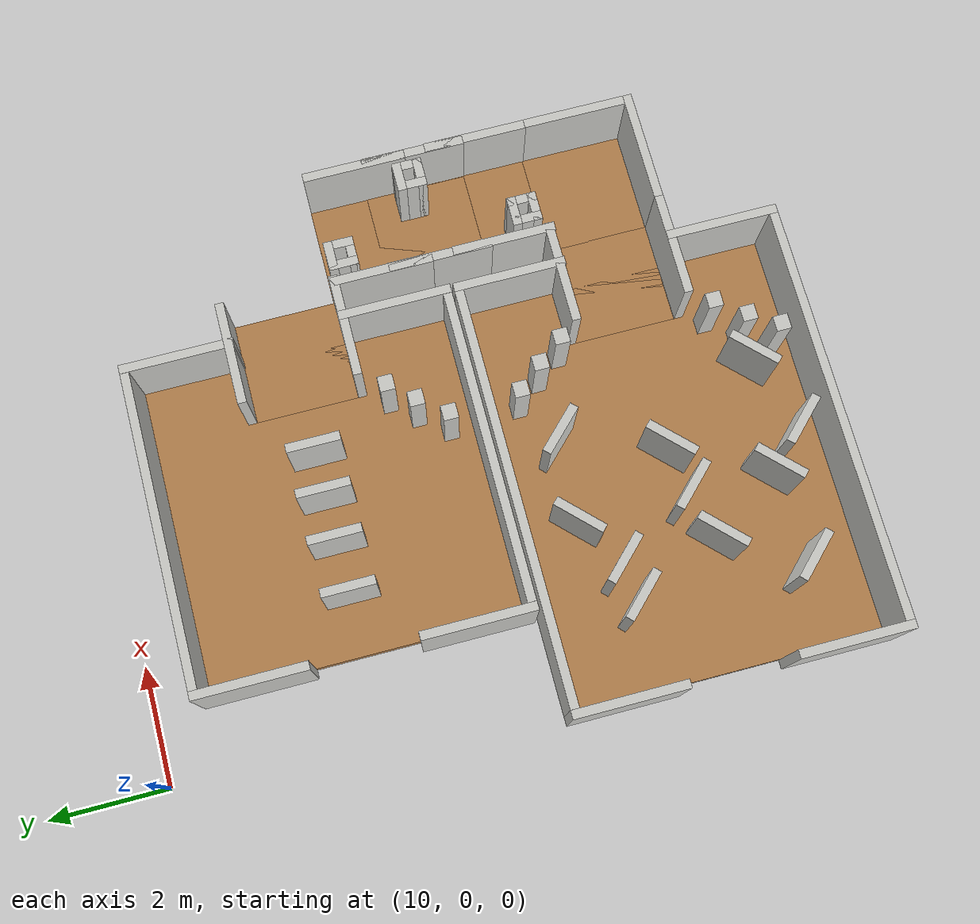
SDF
<sdf version="1.6">
 <world name="default">
  <model name="ground_plane">
   <static>1</static>
   <link name="link">
    <collision name="collision">
     <geometry><plane><normal>0 0 1</normal><size>100 100</size></plane></geometry>
     <surface><friction><ode><mu>100</mu><mu2>50</mu2></ode></friction></surface>
    </collision>
    <visual name="visual">
     <cast_shadows>0</cast_shadows>
     <geometry><plane><normal>0 0 1</normal><size>100 100</size></plane></geometry>
     <material>
      <script><uri>file://media/materials/scripts/gazebo.material</uri><name>Gazebo/Grey</name></script>
     </material>
    </visual>
   </link>
  </model>
  <model name="nerve_room_3x4">
   <pose>12.9907 -9.16925 0 0 -0 1.5708</pose>
   <link name="Wall_11">
    <collision name="Wall_11_Collision">
     <geometry><box><size>7 0.15 1.5</size></box></geometry>
     <pose>0 0 0.75 0 -0 0</pose>
    </collision>
    <visual name="Wall_11_Visual">
     <pose>0 0 0.75 0 -0 0</pose>
     <geometry><box><size>7 0.15 1.5</size></box></geometry>
     <material>
      <script><uri>file://media/materials/scripts/gazebo.material</uri><name>Gazebo/CeilingTiled</name></script>
      <ambient>1 0.764706 0.305882 1</ambient>
     </material>
    </visual>
    <pose>-2.69862 -0.000423 0 0 0 -1.5708</pose>
   </link>
   <link name="Wall_13">
    <collision name="Wall_13_Collision">
     <geometry><box><size>7 0.15 1.5</size></box></geometry>
     <pose>0 0 0.75 0 -0 0</pose>
    </collision>
    <visual name="Wall_13_Visual">
     <pose>0 0 0.75 0 -0 0</pose>
     <geometry><box><size>7 0.15 1.5</size></box></geometry>
     <material>
      <script><uri>file://media/materials/scripts/gazebo.material</uri><name>Gazebo/CeilingTiled</name></script>
      <ambient>1 0.764706 0.305882 1</ambient>
     </material>
    </visual>
    <pose>2.69862 -0.000308 0 0 0 -1.5708</pose>
   </link>
   <link name="Wall_15">
    <collision name="Wall_15_Collision">
     <geometry><box><size>1.9 0.15 1.5</size></box></geometry>
     <pose>0 0 0.75 0 -0 0</pose>
    </collision>
    <visual name="Wall_15_Visual">
     <pose>0 0 0.75 0 -0 0</pose>
     <geometry><box><size>1.9 0.15 1.5</size></box></geometry>
     <material>
      <script><uri>file://media/materials/scripts/gazebo.material</uri><name>Gazebo/CeilingTiled</name></script>
      <ambient>1 0.764706 0.305882 1</ambient>
     </material>
    </visual>
    <pose>-1.82276 -3.57547 0 0 -0 0</pose>
   </link>
   <link name="Wall_17">
    <collision name="Wall_17_Collision">
     <geometry><box><size>1.9 0.15 1.5</size></box></geometry>
     <pose>0 0 0.75 0 -0 0</pose>
    </collision>
    <visual name="Wall_17_Visual">
     <pose>0 0 0.75 0 -0 0</pose>
     <geometry><box><size>1.9 0.15 1.5</size></box></geometry>
     <material>
      <script><uri>file://media/materials/scripts/gazebo.material</uri><name>Gazebo/CeilingTiled</name></script>
      <ambient>1 0.764706 0.305882 1</ambient>
     </material>
    </visual>
    <pose>-1.82217 3.57448 0 0 -0 0</pose>
   </link>
   <link name="Wall_19">
    <collision name="Wall_19_Collision">
     <geometry><box><size>1.9 0.15 1.5</size></box></geometry>
     <pose>0 0 0.75 0 -0 0</pose>
    </collision>
    <visual name="Wall_19_Visual">
     <pose>0 0 0.75 0 -0 0</pose>
     <geometry><box><size>1.9 0.15 1.5</size></box></geometry>
     <material>
      <script><uri>file://media/materials/scripts/gazebo.material</uri><name>Gazebo/CeilingTiled</name></script>
      <ambient>1 0.764706 0.305882 1</ambient>
     </material>
    </visual>
    <pose>1.82197 3.57547 0 0 -0 0</pose>
   </link>
   <link name="Wall_21">
    <collision name="Wall_21_Collision">
     <geometry><box><size>1.9 0.15 1.5</size></box></geometry>
     <pose>0 0 0.75 0 -0 0</pose>
    </collision>
    <visual name="Wall_21_Visual">
     <pose>0 0 0.75 0 -0 0</pose>
     <geometry><box><size>1.9 0.15 1.5</size></box></geometry>
     <material>
      <script><uri>file://media/materials/scripts/gazebo.material</uri><name>Gazebo/CeilingTiled</name></script>
      <ambient>1 0.764706 0.305882 1</ambient>
     </material>
    </visual>
    <pose>1.82281 -3.57503 0 0 -0 0</pose>
   </link>
   <link name="Wall_6">
    <collision name="Wall_6_Collision">
     <geometry><box><size>7 5.25 0.2</size></box></geometry>
     <pose>0 0 0.1 0 -0 0</pose>
    </collision>
    <visual name="Wall_6_Visual">
     <pose>0 0 0.1 0 -0 0</pose>
     <geometry><box><size>7 5.25 0.2</size></box></geometry>
     <material>
      <script><uri>file://media/materials/scripts/gazebo.material</uri><name>Gazebo/Wood</name></script>
      <ambient>1 0.764706 0.305882 1</ambient>
     </material>
    </visual>
    <pose>-0.001169 -0.000255 0 0 -0 1.5708</pose>
   </link>
   <static>1</static>
  </model>
  <model name="nerve_room_3x3">
   <pose>13.8713 -3.57836 0 0 0 -1.5708</pose>
   <link name="Wall_11">
    <collision name="Wall_11_Collision">
     <geometry><box><size>5.25 0.15 1.5</size></box></geometry>
     <pose>0 0 0.75 0 -0 0</pose>
    </collision>
    <visual name="Wall_11_Visual">
     <pose>0 0 0.75 0 -0 0</pose>
     <geometry><box><size>5.25 0.15 1.5</size></box></geometry>
     <material>
      <script><uri>file://media/materials/scripts/gazebo.material</uri><name>Gazebo/CeilingTiled</name></script>
      <ambient>1 0.764706 0.305882 1</ambient>
     </material>
    </visual>
    <pose>-2.69653 -0.003278 0 0 0 -1.5708</pose>
   </link>
   <link name="Wall_13">
    <collision name="Wall_13_Collision">
     <geometry><box><size>5.25 0.15 1.5</size></box></geometry>
     <pose>0 0 0.75 0 -0 0</pose>
    </collision>
    <visual name="Wall_13_Visual">
     <pose>0 0 0.75 0 -0 0</pose>
     <geometry><box><size>5.25 0.15 1.5</size></box></geometry>
     <material>
      <script><uri>file://media/materials/scripts/gazebo.material</uri><name>Gazebo/CeilingTiled</name></script>
      <ambient>1 0.764706 0.305882 1</ambient>
     </material>
    </visual>
    <pose>2.69688 -0.000452 0 0 0 -1.5708</pose>
   </link>
   <link name="Wall_15">
    <collision name="Wall_15_Collision">
     <geometry><box><size>1.9 0.15 1.5</size></box></geometry>
     <pose>0 0 0.75 0 -0 0</pose>
    </collision>
    <visual name="Wall_15_Visual">
     <pose>0 0 0.75 0 -0 0</pose>
     <geometry><box><size>1.9 0.15 1.5</size></box></geometry>
     <material>
      <script><uri>file://media/materials/scripts/gazebo.material</uri><name>Gazebo/CeilingTiled</name></script>
      <ambient>1 0.764706 0.305882 1</ambient>
     </material>
    </visual>
    <pose>-1.82279 -2.70217 0 0 -0 0</pose>
   </link>
   <link name="Wall_17">
    <collision name="Wall_17_Collision">
     <geometry><box><size>1.9 0.15 1.5</size></box></geometry>
     <pose>0 0 0.75 0 -0 0</pose>
    </collision>
    <visual name="Wall_17_Visual">
     <pose>0 0 0.75 0 -0 0</pose>
     <geometry><box><size>1.9 0.15 1.5</size></box></geometry>
     <material>
      <script><uri>file://media/materials/scripts/gazebo.material</uri><name>Gazebo/CeilingTiled</name></script>
      <ambient>1 0.764706 0.305882 1</ambient>
     </material>
    </visual>
    <pose>-1.82219 2.69878 0 0 -0 0</pose>
   </link>
   <link name="Wall_19">
    <collision name="Wall_19_Collision">
     <geometry><box><size>1.9 0.15 1.5</size></box></geometry>
     <pose>0 0 0.75 0 -0 0</pose>
    </collision>
    <visual name="Wall_19_Visual">
     <pose>0 0 0.75 0 -0 0</pose>
     <geometry><box><size>1.9 0.15 1.5</size></box></geometry>
     <material>
      <script><uri>file://media/materials/scripts/gazebo.material</uri><name>Gazebo/CeilingTiled</name></script>
      <ambient>1 0.764706 0.305882 1</ambient>
     </material>
    </visual>
    <pose>1.82194 2.70217 0 0 -0 0</pose>
   </link>
   <link name="Wall_21">
    <collision name="Wall_21_Collision">
     <geometry><box><size>1.9 0.15 1.5</size></box></geometry>
     <pose>0 0 0.75 0 -0 0</pose>
    </collision>
    <visual name="Wall_21_Visual">
     <pose>0 0 0.75 0 -0 0</pose>
     <geometry><box><size>1.9 0.15 1.5</size></box></geometry>
     <material>
      <script><uri>file://media/materials/scripts/gazebo.material</uri><name>Gazebo/CeilingTiled</name></script>
      <ambient>1 0.764706 0.305882 1</ambient>
     </material>
    </visual>
    <pose>1.82279 -2.70173 0 0 -0 0</pose>
   </link>
   <link name="Wall_6">
    <collision name="Wall_6_Collision">
     <geometry><box><size>5.26 5.25 0.2</size></box></geometry>
     <pose>0 0 0.1 0 -0 0</pose>
    </collision>
    <visual name="Wall_6_Visual">
     <pose>0 0 0.1 0 -0 0</pose>
     <geometry><box><size>5.26 5.25 0.2</size></box></geometry>
     <material>
      <script><uri>file://media/materials/scripts/gazebo.material</uri><name>Gazebo/Wood</name></script>
      <ambient>1 0.764706 0.305882 1</ambient>
     </material>
    </visual>
    <pose>-0.001194 0.003047 0 0 -0 1.5708</pose>
   </link>
   <static>1</static>
  </model>
  <model name="nerve_corner_clone_clone_1_clone">
   <pose>18.2225 -9.23029 0 0 0 -3.14159</pose>
   <link name="Wall_0">
    <collision name="Wall_0_Collision">
     <geometry><box><size>1.76 1.75 0.2</size></box></geometry>
     <pose>0 0 0.1 0 -0 0</pose>
    </collision>
    <visual name="Wall_0_Visual">
     <pose>0 0 0.1 0 -0 0</pose>
     <geometry><box><size>1.76 1.75 0.2</size></box></geometry>
     <material>
      <script><uri>file://media/materials/scripts/gazebo.material</uri><name>Gazebo/Wood</name></script>
      <ambient>1 0.764706 0.305882 1</ambient>
     </material>
    </visual>
    <pose>0.077507 -0.077007 0 0 -0 3.14159</pose>
   </link>
   <link name="Wall_2">
    <collision name="Wall_2_Collision">
     <geometry><box><size>1.75 0.15 1.5</size></box></geometry>
     <pose>0 0 0.75 0 -0 0</pose>
    </collision>
    <visual name="Wall_2_Visual">
     <pose>0 0 0.75 0 -0 0</pose>
     <geometry><box><size>1.75 0.15 1.5</size></box></geometry>
     <material>
      <script><uri>file://media/materials/scripts/gazebo.material</uri><name>Gazebo/CeilingTiled</name></script>
      <ambient>1 0.764706 0.305882 1</ambient>
     </material>
    </visual>
    <pose>-0.882493 -0.073007 0 0 0 -1.5708</pose>
   </link>
   <link name="Wall_4">
    <collision name="Wall_4_Collision">
     <geometry><box><size>1.91042 0.15 1.5</size></box></geometry>
     <pose>0 0 0.75 0 -0 0</pose>
    </collision>
    <visual name="Wall_4_Visual">
     <pose>0 0 0.75 0 -0 0</pose>
     <geometry><box><size>1.91042 0.15 1.5</size></box></geometry>
     <material>
      <script><uri>file://media/materials/scripts/gazebo.material</uri><name>Gazebo/CeilingTiled</name></script>
      <ambient>1 0.764706 0.305882 1</ambient>
     </material>
    </visual>
    <pose>-0.002284 0.876825 0 0 -0 3.1414</pose>
   </link>
   <static>1</static>
  </model>
  <model name="nerve_straight_clone_0_clone_clone_clone_2">
   <pose>18.1255 -5.31574 0 0 -0 3.14159</pose>
   <link name="Wall_0">
    <collision name="Wall_0_Collision">
     <geometry><box><size>1.76 1.75 0.2</size></box></geometry>
     <pose>0 0 0.1 0 -0 0</pose>
    </collision>
    <visual name="Wall_0_Visual">
     <pose>0 0 0.1 0 -0 0</pose>
     <geometry><box><size>1.76 1.75 0.2</size></box></geometry>
     <material>
      <script><uri>file://media/materials/scripts/gazebo.material</uri><name>Gazebo/Wood</name></script>
      <ambient>1 0.764706 0.305882 1</ambient>
     </material>
    </visual>
    <pose>0.005 -0.002 0 0 -0 3.14159</pose>
   </link>
   <link name="Wall_2">
    <collision name="Wall_2_Collision">
     <geometry><box><size>1.75 0.15 1.5</size></box></geometry>
     <pose>0 0 0.75 0 -0 0</pose>
    </collision>
    <visual name="Wall_2_Visual">
     <pose>0 0 0.75 0 -0 0</pose>
     <geometry><box><size>1.75 0.15 1.5</size></box></geometry>
     <material>
      <script><uri>file://media/materials/scripts/gazebo.material</uri><name>Gazebo/CeilingTiled</name></script>
      <ambient>1 0.764706 0.305882 1</ambient>
     </material>
    </visual>
    <pose>-0.955 0.002 0 0 0 -1.5708</pose>
   </link>
   <link name="Wall_4">
    <collision name="Wall_4_Collision">
     <geometry><box><size>1.75 0.15 1.5</size></box></geometry>
     <pose>0 0 0.75 0 -0 0</pose>
    </collision>
    <visual name="Wall_4_Visual">
     <pose>0 0 0.75 0 -0 0</pose>
     <geometry><box><size>1.75 0.15 1.5</size></box></geometry>
     <material>
      <script><uri>file://media/materials/scripts/gazebo.material</uri><name>Gazebo/CeilingTiled</name></script>
      <ambient>1 0.764706 0.305882 1</ambient>
     </material>
    </visual>
    <pose>0.955 0.002 0 0 0 -1.5708</pose>
   </link>
   <static>1</static>
  </model>
  <model name="nerve_straight_clone_0_clone_clone_clone_2_clone">
   <pose>16.4 -9.15534 0 0 -0 1.57079</pose>
   <link name="Wall_0">
    <collision name="Wall_0_Collision">
     <geometry><box><size>1.76 1.75 0.2</size></box></geometry>
     <pose>0 0 0.1 0 -0 0</pose>
    </collision>
    <visual name="Wall_0_Visual">
     <pose>0 0 0.1 0 -0 0</pose>
     <geometry><box><size>1.76 1.75 0.2</size></box></geometry>
     <material>
      <script><uri>file://media/materials/scripts/gazebo.material</uri><name>Gazebo/Wood</name></script>
      <ambient>1 0.764706 0.305882 1</ambient>
     </material>
    </visual>
    <pose>0.005 -0.002 0 0 -0 3.14159</pose>
   </link>
   <link name="Wall_2">
    <collision name="Wall_2_Collision">
     <geometry><box><size>1.75 0.15 1.5</size></box></geometry>
     <pose>0 0 0.75 0 -0 0</pose>
    </collision>
    <visual name="Wall_2_Visual">
     <pose>0 0 0.75 0 -0 0</pose>
     <geometry><box><size>1.75 0.15 1.5</size></box></geometry>
     <material>
      <script><uri>file://media/materials/scripts/gazebo.material</uri><name>Gazebo/CeilingTiled</name></script>
      <ambient>1 0.764706 0.305882 1</ambient>
     </material>
    </visual>
    <pose>-0.955 0.002 0 0 0 -1.5708</pose>
   </link>
   <link name="Wall_4">
    <collision name="Wall_4_Collision">
     <geometry><box><size>1.75 0.15 1.5</size></box></geometry>
     <pose>0 0 0.75 0 -0 0</pose>
    </collision>
    <visual name="Wall_4_Visual">
     <pose>0 0 0.75 0 -0 0</pose>
     <geometry><box><size>1.75 0.15 1.5</size></box></geometry>
     <material>
      <script><uri>file://media/materials/scripts/gazebo.material</uri><name>Gazebo/CeilingTiled</name></script>
      <ambient>1 0.764706 0.305882 1</ambient>
     </material>
    </visual>
    <pose>0.955 0.002 0 0 0 -1.5708</pose>
   </link>
   <static>1</static>
  </model>
  <model name="nerve_straight_clone_0_clone_clone_clone_2_clone_clone">
   <pose>16.4 -3.57133 0 0 -0 1.57079</pose>
   <link name="Wall_0">
    <collision name="Wall_0_Collision">
     <geometry><box><size>1.76 1.75 0.2</size></box></geometry>
     <pose>0 0 0.1 0 -0 0</pose>
    </collision>
    <visual name="Wall_0_Visual">
     <pose>0 0 0.1 0 -0 0</pose>
     <geometry><box><size>1.76 1.75 0.2</size></box></geometry>
     <material>
      <script><uri>file://media/materials/scripts/gazebo.material</uri><name>Gazebo/Wood</name></script>
      <ambient>1 0.764706 0.305882 1</ambient>
     </material>
    </visual>
    <pose>0.005 -0.002 0 0 -0 3.14159</pose>
   </link>
   <link name="Wall_2">
    <collision name="Wall_2_Collision">
     <geometry><box><size>1.75 0.15 1.5</size></box></geometry>
     <pose>0 0 0.75 0 -0 0</pose>
    </collision>
    <visual name="Wall_2_Visual">
     <pose>0 0 0.75 0 -0 0</pose>
     <geometry><box><size>1.75 0.15 1.5</size></box></geometry>
     <material>
      <script><uri>file://media/materials/scripts/gazebo.material</uri><name>Gazebo/CeilingTiled</name></script>
      <ambient>1 0.764706 0.305882 1</ambient>
     </material>
    </visual>
    <pose>-0.955 0.002 0 0 0 -1.5708</pose>
   </link>
   <link name="Wall_4">
    <collision name="Wall_4_Collision">
     <geometry><box><size>1.75 0.15 1.5</size></box></geometry>
     <pose>0 0 0.75 0 -0 0</pose>
    </collision>
    <visual name="Wall_4_Visual">
     <pose>0 0 0.75 0 -0 0</pose>
     <geometry><box><size>1.75 0.15 1.5</size></box></geometry>
     <material>
      <script><uri>file://media/materials/scripts/gazebo.material</uri><name>Gazebo/CeilingTiled</name></script>
      <ambient>1 0.764706 0.305882 1</ambient>
     </material>
    </visual>
    <pose>0.955 0.002 0 0 0 -1.5708</pose>
   </link>
   <static>1</static>
  </model>
  <model name="nerve_straight_clone_0_clone_clone_clone_2_clone_0">
   <pose>18.1471 -7.41777 0 0 -0 3.14159</pose>
   <link name="Wall_0">
    <collision name="Wall_0_Collision">
     <geometry><box><size>1.76 1.75 0.2</size></box></geometry>
     <pose>0 0 0.1 0 -0 0</pose>
    </collision>
    <visual name="Wall_0_Visual">
     <pose>0 0 0.1 0 -0 0</pose>
     <geometry><box><size>1.76 1.75 0.2</size></box></geometry>
     <material>
      <script><uri>file://media/materials/scripts/gazebo.material</uri><name>Gazebo/Wood</name></script>
      <ambient>1 0.764706 0.305882 1</ambient>
     </material>
    </visual>
    <pose>0.005 -0.002 0 0 -0 3.14159</pose>
   </link>
   <link name="Wall_2">
    <collision name="Wall_2_Collision">
     <geometry><box><size>1.75 0.15 1.5</size></box></geometry>
     <pose>0 0 0.75 0 -0 0</pose>
    </collision>
    <visual name="Wall_2_Visual">
     <pose>0 0 0.75 0 -0 0</pose>
     <geometry><box><size>1.75 0.15 1.5</size></box></geometry>
     <material>
      <script><uri>file://media/materials/scripts/gazebo.material</uri><name>Gazebo/CeilingTiled</name></script>
      <ambient>1 0.764706 0.305882 1</ambient>
     </material>
    </visual>
    <pose>-0.955 0.002 0 0 0 -1.5708</pose>
   </link>
   <link name="Wall_4">
    <collision name="Wall_4_Collision">
     <geometry><box><size>1.75 0.15 1.5</size></box></geometry>
     <pose>0 0 0.75 0 -0 0</pose>
    </collision>
    <visual name="Wall_4_Visual">
     <pose>0 0 0.75 0 -0 0</pose>
     <geometry><box><size>1.75 0.15 1.5</size></box></geometry>
     <material>
      <script><uri>file://media/materials/scripts/gazebo.material</uri><name>Gazebo/CeilingTiled</name></script>
      <ambient>1 0.764706 0.305882 1</ambient>
     </material>
    </visual>
    <pose>0.955 0.002 0 0 0 -1.5708</pose>
   </link>
   <static>1</static>
  </model>
  <model name="nerve_straight_clone_0_clone_clone_clone_2_clone_1">
   <pose>18.1336 -6.32874 0 0 -0 3.14159</pose>
   <link name="Wall_0">
    <collision name="Wall_0_Collision">
     <geometry><box><size>1.76 1.75 0.2</size></box></geometry>
     <pose>0 0 0.1 0 -0 0</pose>
    </collision>
    <visual name="Wall_0_Visual">
     <pose>0 0 0.1 0 -0 0</pose>
     <geometry><box><size>1.76 1.75 0.2</size></box></geometry>
     <material>
      <script><uri>file://media/materials/scripts/gazebo.material</uri><name>Gazebo/Wood</name></script>
      <ambient>1 0.764706 0.305882 1</ambient>
     </material>
    </visual>
    <pose>0.005 -0.002 0 0 -0 3.14159</pose>
   </link>
   <link name="Wall_2">
    <collision name="Wall_2_Collision">
     <geometry><box><size>1.75 0.15 1.5</size></box></geometry>
     <pose>0 0 0.75 0 -0 0</pose>
    </collision>
    <visual name="Wall_2_Visual">
     <pose>0 0 0.75 0 -0 0</pose>
     <geometry><box><size>1.75 0.15 1.5</size></box></geometry>
     <material>
      <script><uri>file://media/materials/scripts/gazebo.material</uri><name>Gazebo/CeilingTiled</name></script>
      <ambient>1 0.764706 0.305882 1</ambient>
     </material>
    </visual>
    <pose>-0.955 0.002 0 0 0 -1.5708</pose>
   </link>
   <link name="Wall_4">
    <collision name="Wall_4_Collision">
     <geometry><box><size>1.75 0.15 1.5</size></box></geometry>
     <pose>0 0 0.75 0 -0 0</pose>
    </collision>
    <visual name="Wall_4_Visual">
     <pose>0 0 0.75 0 -0 0</pose>
     <geometry><box><size>1.75 0.15 1.5</size></box></geometry>
     <material>
      <script><uri>file://media/materials/scripts/gazebo.material</uri><name>Gazebo/CeilingTiled</name></script>
      <ambient>1 0.764706 0.305882 1</ambient>
     </material>
    </visual>
    <pose>0.955 0.002 0 0 0 -1.5708</pose>
   </link>
   <static>1</static>
  </model>
  <model name="nerve_obs_squarepillar_large_clone_36">
   <pose>17.6183 -4.74901 0.2 0 -0 0</pose>
   <link name="Wall_31">
    <collision name="Wall_31_Collision">
     <geometry><box><size>0.5 0.15 1.3</size></box></geometry>
     <pose>0 0 0.65 0 -0 0</pose>
    </collision>
    <visual name="Wall_31_Visual">
     <pose>0 0 0.65 0 -0 0</pose>
     <geometry><box><size>0.5 0.15 1.3</size></box></geometry>
     <material>
      <script><uri>file://media/materials/scripts/gazebo.material</uri><name>Gazebo/CeilingTiled</name></script>
      <ambient>1 0.764706 0.305882 1</ambient>
     </material>
    </visual>
    <pose>-0.175 0 0 0 0 -1.5708</pose>
   </link>
   <link name="Wall_32">
    <collision name="Wall_32_Collision">
     <geometry><box><size>0.5 0.15 1.3</size></box></geometry>
     <pose>0 0 0.65 0 -0 0</pose>
    </collision>
    <visual name="Wall_32_Visual">
     <pose>0 0 0.65 0 -0 0</pose>
     <geometry><box><size>0.5 0.15 1.3</size></box></geometry>
     <material>
      <script><uri>file://media/materials/scripts/gazebo.material</uri><name>Gazebo/CeilingTiled</name></script>
      <ambient>1 0.764706 0.305882 1</ambient>
     </material>
    </visual>
    <pose>0 -0.175 0 0 -0 0</pose>
   </link>
   <link name="Wall_33">
    <collision name="Wall_33_Collision">
     <geometry><box><size>0.5 0.15 1.3</size></box></geometry>
     <pose>0 0 0.65 0 -0 0</pose>
    </collision>
    <visual name="Wall_33_Visual">
     <pose>0 0 0.65 0 -0 0</pose>
     <geometry><box><size>0.5 0.15 1.3</size></box></geometry>
     <material>
      <script><uri>file://media/materials/scripts/gazebo.material</uri><name>Gazebo/CeilingTiled</name></script>
      <ambient>1 0.764706 0.305882 1</ambient>
     </material>
    </visual>
    <pose>0.175 0 0 0 -0 1.5708</pose>
   </link>
   <link name="Wall_34">
    <collision name="Wall_34_Collision">
     <geometry><box><size>0.5 0.15 1.3</size></box></geometry>
     <pose>0 0 0.65 0 -0 0</pose>
    </collision>
    <visual name="Wall_34_Visual">
     <pose>0 0 0.65 0 -0 0</pose>
     <geometry><box><size>0.5 0.15 1.3</size></box></geometry>
     <material>
      <script><uri>file://media/materials/scripts/gazebo.material</uri><name>Gazebo/CeilingTiled</name></script>
      <ambient>1 0.764706 0.305882 1</ambient>
     </material>
    </visual>
    <pose>0 0.175 0 0 -0 3.14159</pose>
   </link>
   <static>1</static>
  </model>
  <model name="nerve_obs_squarepillar_large_clone_37">
   <pose>17.6204 -7.88633 0.2 0 -0 0</pose>
   <link name="Wall_31">
    <collision name="Wall_31_Collision">
     <geometry><box><size>0.5 0.15 1.3</size></box></geometry>
     <pose>0 0 0.65 0 -0 0</pose>
    </collision>
    <visual name="Wall_31_Visual">
     <pose>0 0 0.65 0 -0 0</pose>
     <geometry><box><size>0.5 0.15 1.3</size></box></geometry>
     <material>
      <script><uri>file://media/materials/scripts/gazebo.material</uri><name>Gazebo/CeilingTiled</name></script>
      <ambient>1 0.764706 0.305882 1</ambient>
     </material>
    </visual>
    <pose>-0.175 0 0 0 0 -1.5708</pose>
   </link>
   <link name="Wall_32">
    <collision name="Wall_32_Collision">
     <geometry><box><size>0.5 0.15 1.3</size></box></geometry>
     <pose>0 0 0.65 0 -0 0</pose>
    </collision>
    <visual name="Wall_32_Visual">
     <pose>0 0 0.65 0 -0 0</pose>
     <geometry><box><size>0.5 0.15 1.3</size></box></geometry>
     <material>
      <script><uri>file://media/materials/scripts/gazebo.material</uri><name>Gazebo/CeilingTiled</name></script>
      <ambient>1 0.764706 0.305882 1</ambient>
     </material>
    </visual>
    <pose>0 -0.175 0 0 -0 0</pose>
   </link>
   <link name="Wall_33">
    <collision name="Wall_33_Collision">
     <geometry><box><size>0.5 0.15 1.3</size></box></geometry>
     <pose>0 0 0.65 0 -0 0</pose>
    </collision>
    <visual name="Wall_33_Visual">
     <pose>0 0 0.65 0 -0 0</pose>
     <geometry><box><size>0.5 0.15 1.3</size></box></geometry>
     <material>
      <script><uri>file://media/materials/scripts/gazebo.material</uri><name>Gazebo/CeilingTiled</name></script>
      <ambient>1 0.764706 0.305882 1</ambient>
     </material>
    </visual>
    <pose>0.175 0 0 0 -0 1.5708</pose>
   </link>
   <link name="Wall_34">
    <collision name="Wall_34_Collision">
     <geometry><box><size>0.5 0.15 1.3</size></box></geometry>
     <pose>0 0 0.65 0 -0 0</pose>
    </collision>
    <visual name="Wall_34_Visual">
     <pose>0 0 0.65 0 -0 0</pose>
     <geometry><box><size>0.5 0.15 1.3</size></box></geometry>
     <material>
      <script><uri>file://media/materials/scripts/gazebo.material</uri><name>Gazebo/CeilingTiled</name></script>
      <ambient>1 0.764706 0.305882 1</ambient>
     </material>
    </visual>
    <pose>0 0.175 0 0 -0 3.14159</pose>
   </link>
   <static>1</static>
  </model>
  <model name="nerve_obs_squarepillar_large_clone_38">
   <pose>18.7022 -6.18517 0.2 0 -0 0</pose>
   <link name="Wall_31">
    <collision name="Wall_31_Collision">
     <geometry><box><size>0.5 0.15 1.3</size></box></geometry>
     <pose>0 0 0.65 0 -0 0</pose>
    </collision>
    <visual name="Wall_31_Visual">
     <pose>0 0 0.65 0 -0 0</pose>
     <geometry><box><size>0.5 0.15 1.3</size></box></geometry>
     <material>
      <script><uri>file://media/materials/scripts/gazebo.material</uri><name>Gazebo/CeilingTiled</name></script>
      <ambient>1 0.764706 0.305882 1</ambient>
     </material>
    </visual>
    <pose>-0.175 0 0 0 0 -1.5708</pose>
   </link>
   <link name="Wall_32">
    <collision name="Wall_32_Collision">
     <geometry><box><size>0.5 0.15 1.3</size></box></geometry>
     <pose>0 0 0.65 0 -0 0</pose>
    </collision>
    <visual name="Wall_32_Visual">
     <pose>0 0 0.65 0 -0 0</pose>
     <geometry><box><size>0.5 0.15 1.3</size></box></geometry>
     <material>
      <script><uri>file://media/materials/scripts/gazebo.material</uri><name>Gazebo/CeilingTiled</name></script>
      <ambient>1 0.764706 0.305882 1</ambient>
     </material>
    </visual>
    <pose>0 -0.175 0 0 -0 0</pose>
   </link>
   <link name="Wall_33">
    <collision name="Wall_33_Collision">
     <geometry><box><size>0.5 0.15 1.3</size></box></geometry>
     <pose>0 0 0.65 0 -0 0</pose>
    </collision>
    <visual name="Wall_33_Visual">
     <pose>0 0 0.65 0 -0 0</pose>
     <geometry><box><size>0.5 0.15 1.3</size></box></geometry>
     <material>
      <script><uri>file://media/materials/scripts/gazebo.material</uri><name>Gazebo/CeilingTiled</name></script>
      <ambient>1 0.764706 0.305882 1</ambient>
     </material>
    </visual>
    <pose>0.175 0 0 0 -0 1.5708</pose>
   </link>
   <link name="Wall_34">
    <collision name="Wall_34_Collision">
     <geometry><box><size>0.5 0.15 1.3</size></box></geometry>
     <pose>0 0 0.65 0 -0 0</pose>
    </collision>
    <visual name="Wall_34_Visual">
     <pose>0 0 0.65 0 -0 0</pose>
     <geometry><box><size>0.5 0.15 1.3</size></box></geometry>
     <material>
      <script><uri>file://media/materials/scripts/gazebo.material</uri><name>Gazebo/CeilingTiled</name></script>
      <ambient>1 0.764706 0.305882 1</ambient>
     </material>
    </visual>
    <pose>0 0.175 0 0 -0 3.14159</pose>
   </link>
   <static>1</static>
  </model>
  <model name="nerve_obs_squarepillar_small_clone_12">
   <pose>15.289 -10.4708 0.2 0 -0 0</pose>
   <link name="Wall_40">
    <collision name="Wall_40_Collision">
     <geometry><box><size>0.26 0.25 1.3</size></box></geometry>
     <pose>0 0 0.65 0 -0 0</pose>
    </collision>
    <visual name="Wall_40_Visual">
     <pose>0 0 0.65 0 -0 0</pose>
     <geometry><box><size>0.26 0.25 1.3</size></box></geometry>
     <material>
      <script><uri>file://media/materials/scripts/gazebo.material</uri><name>Gazebo/CeilingTiled</name></script>
      <ambient>1 0.764706 0.305882 1</ambient>
     </material>
    </visual>
   </link>
   <static>1</static>
  </model>
  <model name="nerve_obs_squarepillar_small_clone_13">
   <pose>14.9295 -10.947 0.2 0 -0 0</pose>
   <link name="Wall_40">
    <collision name="Wall_40_Collision">
     <geometry><box><size>0.26 0.25 1.3</size></box></geometry>
     <pose>0 0 0.65 0 -0 0</pose>
    </collision>
    <visual name="Wall_40_Visual">
     <pose>0 0 0.65 0 -0 0</pose>
     <geometry><box><size>0.26 0.25 1.3</size></box></geometry>
     <material>
      <script><uri>file://media/materials/scripts/gazebo.material</uri><name>Gazebo/CeilingTiled</name></script>
      <ambient>1 0.764706 0.305882 1</ambient>
     </material>
    </visual>
   </link>
   <static>1</static>
  </model>
  <model name="nerve_obs_squarepillar_small_clone_14">
   <pose>14.6301 -11.4221 0.2 0 -0 0</pose>
   <link name="Wall_40">
    <collision name="Wall_40_Collision">
     <geometry><box><size>0.26 0.25 1.3</size></box></geometry>
     <pose>0 0 0.65 0 -0 0</pose>
    </collision>
    <visual name="Wall_40_Visual">
     <pose>0 0 0.65 0 -0 0</pose>
     <geometry><box><size>0.26 0.25 1.3</size></box></geometry>
     <material>
      <script><uri>file://media/materials/scripts/gazebo.material</uri><name>Gazebo/CeilingTiled</name></script>
      <ambient>1 0.764706 0.305882 1</ambient>
     </material>
    </visual>
   </link>
   <static>1</static>
  </model>
  <model name="nerve_obs_squarepillar_small_clone_15">
   <pose>15.3163 -7.87631 0.2 0 -0 0</pose>
   <link name="Wall_40">
    <collision name="Wall_40_Collision">
     <geometry><box><size>0.26 0.25 1.3</size></box></geometry>
     <pose>0 0 0.65 0 -0 0</pose>
    </collision>
    <visual name="Wall_40_Visual">
     <pose>0 0 0.65 0 -0 0</pose>
     <geometry><box><size>0.26 0.25 1.3</size></box></geometry>
     <material>
      <script><uri>file://media/materials/scripts/gazebo.material</uri><name>Gazebo/CeilingTiled</name></script>
      <ambient>1 0.764706 0.305882 1</ambient>
     </material>
    </visual>
   </link>
   <static>1</static>
  </model>
  <model name="nerve_obs_squarepillar_small_clone_16">
   <pose>14.9772 -7.43456 0.2 0 -0 0</pose>
   <link name="Wall_40">
    <collision name="Wall_40_Collision">
     <geometry><box><size>0.26 0.25 1.3</size></box></geometry>
     <pose>0 0 0.65 0 -0 0</pose>
    </collision>
    <visual name="Wall_40_Visual">
     <pose>0 0 0.65 0 -0 0</pose>
     <geometry><box><size>0.26 0.25 1.3</size></box></geometry>
     <material>
      <script><uri>file://media/materials/scripts/gazebo.material</uri><name>Gazebo/CeilingTiled</name></script>
      <ambient>1 0.764706 0.305882 1</ambient>
     </material>
    </visual>
   </link>
   <static>1</static>
  </model>
  <model name="nerve_obs_squarepillar_small_clone_17">
   <pose>14.6175 -7.01172 0.2 0 -0 0</pose>
   <link name="Wall_40">
    <collision name="Wall_40_Collision">
     <geometry><box><size>0.26 0.25 1.3</size></box></geometry>
     <pose>0 0 0.65 0 -0 0</pose>
    </collision>
    <visual name="Wall_40_Visual">
     <pose>0 0 0.65 0 -0 0</pose>
     <geometry><box><size>0.26 0.25 1.3</size></box></geometry>
     <material>
      <script><uri>file://media/materials/scripts/gazebo.material</uri><name>Gazebo/CeilingTiled</name></script>
      <ambient>1 0.764706 0.305882 1</ambient>
     </material>
    </visual>
   </link>
   <static>1</static>
  </model>
  <model name="nerve_obs_squarepillar_small_clone_18">
   <pose>15.2646 -4.93414 0.2 0 -0 0</pose>
   <link name="Wall_40">
    <collision name="Wall_40_Collision">
     <geometry><box><size>0.26 0.25 1.3</size></box></geometry>
     <pose>0 0 0.65 0 -0 0</pose>
    </collision>
    <visual name="Wall_40_Visual">
     <pose>0 0 0.65 0 -0 0</pose>
     <geometry><box><size>0.26 0.25 1.3</size></box></geometry>
     <material>
      <script><uri>file://media/materials/scripts/gazebo.material</uri><name>Gazebo/CeilingTiled</name></script>
      <ambient>1 0.764706 0.305882 1</ambient>
     </material>
    </visual>
   </link>
   <static>1</static>
  </model>
  <model name="nerve_obs_squarepillar_small_clone_19">
   <pose>14.9015 -5.33872 0.2 0 -0 0</pose>
   <link name="Wall_40">
    <collision name="Wall_40_Collision">
     <geometry><box><size>0.26 0.25 1.3</size></box></geometry>
     <pose>0 0 0.65 0 -0 0</pose>
    </collision>
    <visual name="Wall_40_Visual">
     <pose>0 0 0.65 0 -0 0</pose>
     <geometry><box><size>0.26 0.25 1.3</size></box></geometry>
     <material>
      <script><uri>file://media/materials/scripts/gazebo.material</uri><name>Gazebo/CeilingTiled</name></script>
      <ambient>1 0.764706 0.305882 1</ambient>
     </material>
    </visual>
   </link>
   <static>1</static>
  </model>
  <model name="nerve_obs_squarepillar_small_clone_20">
   <pose>14.5392 -5.80264 0.2 0 -0 0</pose>
   <link name="Wall_40">
    <collision name="Wall_40_Collision">
     <geometry><box><size>0.26 0.25 1.3</size></box></geometry>
     <pose>0 0 0.65 0 -0 0</pose>
    </collision>
    <visual name="Wall_40_Visual">
     <pose>0 0 0.65 0 -0 0</pose>
     <geometry><box><size>0.26 0.25 1.3</size></box></geometry>
     <material>
      <script><uri>file://media/materials/scripts/gazebo.material</uri><name>Gazebo/CeilingTiled</name></script>
      <ambient>1 0.764706 0.305882 1</ambient>
     </material>
    </visual>
   </link>
   <static>1</static>
  </model>
  <model name="nerve_obs_wall_short_clone_1">
   <pose>12.2063 -3.56121 0.2 0 0 -1.5708</pose>
   <link name="Wall_21">
    <collision name="Wall_21_Collision">
     <geometry><box><size>0.9 0.15 1.3</size></box></geometry>
     <pose>0 0 0.65 0 -0 0</pose>
    </collision>
    <visual name="Wall_21_Visual">
     <pose>0 0 0.65 0 -0 0</pose>
     <geometry><box><size>0.9 0.15 1.3</size></box></geometry>
     <material>
      <script><uri>file://media/materials/scripts/gazebo.material</uri><name>Gazebo/CeilingTiled</name></script>
      <ambient>1 0.764706 0.305882 1</ambient>
     </material>
    </visual>
   </link>
   <static>1</static>
  </model>
  <model name="nerve_obs_wall_short_clone_2">
   <pose>13.067 -3.54868 0.2 0 0 -1.5708</pose>
   <link name="Wall_21">
    <collision name="Wall_21_Collision">
     <geometry><box><size>0.9 0.15 1.3</size></box></geometry>
     <pose>0 0 0.65 0 -0 0</pose>
    </collision>
    <visual name="Wall_21_Visual">
     <pose>0 0 0.65 0 -0 0</pose>
     <geometry><box><size>0.9 0.15 1.3</size></box></geometry>
     <material>
      <script><uri>file://media/materials/scripts/gazebo.material</uri><name>Gazebo/CeilingTiled</name></script>
      <ambient>1 0.764706 0.305882 1</ambient>
     </material>
    </visual>
   </link>
   <static>1</static>
  </model>
  <model name="nerve_obs_wall_short_clone_3">
   <pose>13.8446 -3.54972 0.2 0 0 -1.5708</pose>
   <link name="Wall_21">
    <collision name="Wall_21_Collision">
     <geometry><box><size>0.9 0.15 1.3</size></box></geometry>
     <pose>0 0 0.65 0 -0 0</pose>
    </collision>
    <visual name="Wall_21_Visual">
     <pose>0 0 0.65 0 -0 0</pose>
     <geometry><box><size>0.9 0.15 1.3</size></box></geometry>
     <material>
      <script><uri>file://media/materials/scripts/gazebo.material</uri><name>Gazebo/CeilingTiled</name></script>
      <ambient>1 0.764706 0.305882 1</ambient>
     </material>
    </visual>
   </link>
   <static>1</static>
  </model>
  <model name="nerve_obs_wall_short_clone_4">
   <pose>14.6082 -3.56479 0.2 0 0 -1.5708</pose>
   <link name="Wall_21">
    <collision name="Wall_21_Collision">
     <geometry><box><size>0.9 0.15 1.3</size></box></geometry>
     <pose>0 0 0.65 0 -0 0</pose>
    </collision>
    <visual name="Wall_21_Visual">
     <pose>0 0 0.65 0 -0 0</pose>
     <geometry><box><size>0.9 0.15 1.3</size></box></geometry>
     <material>
      <script><uri>file://media/materials/scripts/gazebo.material</uri><name>Gazebo/CeilingTiled</name></script>
      <ambient>1 0.764706 0.305882 1</ambient>
     </material>
    </visual>
   </link>
   <static>1</static>
  </model>
  <model name="nerve_obs_wall_short_clone_5">
   <pose>10.919 -7.98785 0.2 0 0 -0.785402</pose>
   <link name="Wall_21">
    <collision name="Wall_21_Collision">
     <geometry><box><size>0.9 0.15 1.3</size></box></geometry>
     <pose>0 0 0.65 0 -0 0</pose>
    </collision>
    <visual name="Wall_21_Visual">
     <pose>0 0 0.65 0 -0 0</pose>
     <geometry><box><size>0.9 0.15 1.3</size></box></geometry>
     <material>
      <script><uri>file://media/materials/scripts/gazebo.material</uri><name>Gazebo/CeilingTiled</name></script>
      <ambient>1 0.764706 0.305882 1</ambient>
     </material>
    </visual>
   </link>
   <static>1</static>
  </model>
  <model name="nerve_obs_wall_short_clone_5_clone">
   <pose>10.8396 -10.7854 0.2 0 0 -0.785402</pose>
   <link name="Wall_21">
    <collision name="Wall_21_Collision">
     <geometry><box><size>0.9 0.15 1.3</size></box></geometry>
     <pose>0 0 0.65 0 -0 0</pose>
    </collision>
    <visual name="Wall_21_Visual">
     <pose>0 0 0.65 0 -0 0</pose>
     <geometry><box><size>0.9 0.15 1.3</size></box></geometry>
     <material>
      <script><uri>file://media/materials/scripts/gazebo.material</uri><name>Gazebo/CeilingTiled</name></script>
      <ambient>1 0.764706 0.305882 1</ambient>
     </material>
    </visual>
   </link>
   <static>1</static>
  </model>
  <model name="nerve_obs_wall_short_clone_5_clone_0">
   <pose>13.8194 -7.45121 0.2 0 0 -0.785402</pose>
   <link name="Wall_21">
    <collision name="Wall_21_Collision">
     <geometry><box><size>0.9 0.15 1.3</size></box></geometry>
     <pose>0 0 0.65 0 -0 0</pose>
    </collision>
    <visual name="Wall_21_Visual">
     <pose>0 0 0.65 0 -0 0</pose>
     <geometry><box><size>0.9 0.15 1.3</size></box></geometry>
     <material>
      <script><uri>file://media/materials/scripts/gazebo.material</uri><name>Gazebo/CeilingTiled</name></script>
      <ambient>1 0.764706 0.305882 1</ambient>
     </material>
    </visual>
   </link>
   <static>1</static>
  </model>
  <model name="nerve_obs_wall_short_clone_5_clone_1">
   <pose>13.232 -9.14328 0.2 0 0 -2.3562</pose>
   <link name="Wall_21">
    <collision name="Wall_21_Collision">
     <geometry><box><size>0.9 0.15 1.3</size></box></geometry>
     <pose>0 0 0.65 0 -0 0</pose>
    </collision>
    <visual name="Wall_21_Visual">
     <pose>0 0 0.65 0 -0 0</pose>
     <geometry><box><size>0.9 0.15 1.3</size></box></geometry>
     <material>
      <script><uri>file://media/materials/scripts/gazebo.material</uri><name>Gazebo/CeilingTiled</name></script>
      <ambient>1 0.764706 0.305882 1</ambient>
     </material>
    </visual>
   </link>
   <static>1</static>
  </model>
  <model name="nerve_obs_wall_short_clone_5_clone_2">
   <pose>12.9964 -11.2673 0.2 0 0 -0.785402</pose>
   <link name="Wall_21">
    <collision name="Wall_21_Collision">
     <geometry><box><size>0.9 0.15 1.3</size></box></geometry>
     <pose>0 0 0.65 0 -0 0</pose>
    </collision>
    <visual name="Wall_21_Visual">
     <pose>0 0 0.65 0 -0 0</pose>
     <geometry><box><size>0.9 0.15 1.3</size></box></geometry>
     <material>
      <script><uri>file://media/materials/scripts/gazebo.material</uri><name>Gazebo/CeilingTiled</name></script>
      <ambient>1 0.764706 0.305882 1</ambient>
     </material>
    </visual>
   </link>
   <static>1</static>
  </model>
  <model name="nerve_obs_wall_short_clone_5_clone_1_clone">
   <pose>12.3895 -7.37467 0.2 0 0 -2.3562</pose>
   <link name="Wall_21">
    <collision name="Wall_21_Collision">
     <geometry><box><size>0.9 0.15 1.3</size></box></geometry>
     <pose>0 0 0.65 0 -0 0</pose>
    </collision>
    <visual name="Wall_21_Visual">
     <pose>0 0 0.65 0 -0 0</pose>
     <geometry><box><size>0.9 0.15 1.3</size></box></geometry>
     <material>
      <script><uri>file://media/materials/scripts/gazebo.material</uri><name>Gazebo/CeilingTiled</name></script>
      <ambient>1 0.764706 0.305882 1</ambient>
     </material>
    </visual>
   </link>
   <static>1</static>
  </model>
  <model name="nerve_obs_wall_short_clone_5_clone_1_clone_0">
   <pose>12.4274 -10.7141 0.2 0 0 -2.3562</pose>
   <link name="Wall_21">
    <collision name="Wall_21_Collision">
     <geometry><box><size>0.9 0.15 1.3</size></box></geometry>
     <pose>0 0 0.65 0 -0 0</pose>
    </collision>
    <visual name="Wall_21_Visual">
     <pose>0 0 0.65 0 -0 0</pose>
     <geometry><box><size>0.9 0.15 1.3</size></box></geometry>
     <material>
      <script><uri>file://media/materials/scripts/gazebo.material</uri><name>Gazebo/CeilingTiled</name></script>
      <ambient>1 0.764706 0.305882 1</ambient>
     </material>
    </visual>
   </link>
   <static>1</static>
  </model>
  <model name="nerve_obs_wall_short_clone_5_clone_1_clone_1">
   <pose>14.3462 -10.8826 0.2 0 0 -2.3562</pose>
   <link name="Wall_21">
    <collision name="Wall_21_Collision">
     <geometry><box><size>0.9 0.15 1.3</size></box></geometry>
     <pose>0 0 0.65 0 -0 0</pose>
    </collision>
    <visual name="Wall_21_Visual">
     <pose>0 0 0.65 0 -0 0</pose>
     <geometry><box><size>0.9 0.15 1.3</size></box></geometry>
     <material>
      <script><uri>file://media/materials/scripts/gazebo.material</uri><name>Gazebo/CeilingTiled</name></script>
      <ambient>1 0.764706 0.305882 1</ambient>
     </material>
    </visual>
   </link>
   <static>1</static>
  </model>
  <model name="nerve_obs_wall_short_clone_5_clone_1_clone_4">
   <pose>11.6012 -9.51158 0.2 0 0 -2.3562</pose>
   <link name="Wall_21">
    <collision name="Wall_21_Collision">
     <geometry><box><size>0.9 0.15 1.3</size></box></geometry>
     <pose>0 0 0.65 0 -0 0</pose>
    </collision>
    <visual name="Wall_21_Visual">
     <pose>0 0 0.65 0 -0 0</pose>
     <geometry><box><size>0.9 0.15 1.3</size></box></geometry>
     <material>
      <script><uri>file://media/materials/scripts/gazebo.material</uri><name>Gazebo/CeilingTiled</name></script>
      <ambient>1 0.764706 0.305882 1</ambient>
     </material>
    </visual>
   </link>
   <static>1</static>
  </model>
  <model name="nerve_obs_wall_short_clone_5_clone_2_clone">
   <pose>12.4168 -9.25346 0.2 0 0 -0.785402</pose>
   <link name="Wall_21">
    <collision name="Wall_21_Collision">
     <geometry><box><size>0.9 0.15 1.3</size></box></geometry>
     <pose>0 0 0.65 0 -0 0</pose>
    </collision>
    <visual name="Wall_21_Visual">
     <pose>0 0 0.65 0 -0 0</pose>
     <geometry><box><size>0.9 0.15 1.3</size></box></geometry>
     <material>
      <script><uri>file://media/materials/scripts/gazebo.material</uri><name>Gazebo/CeilingTiled</name></script>
      <ambient>1 0.764706 0.305882 1</ambient>
     </material>
    </visual>
   </link>
   <static>1</static>
  </model>
  <model name="nerve_obs_wall_short_clone_5_clone_2_clone_0">
   <pose>11.5516 -7.87684 0.2 0 0 -0.785402</pose>
   <link name="Wall_21">
    <collision name="Wall_21_Collision">
     <geometry><box><size>0.9 0.15 1.3</size></box></geometry>
     <pose>0 0 0.65 0 -0 0</pose>
    </collision>
    <visual name="Wall_21_Visual">
     <pose>0 0 0.65 0 -0 0</pose>
     <geometry><box><size>0.9 0.15 1.3</size></box></geometry>
     <material>
      <script><uri>file://media/materials/scripts/gazebo.material</uri><name>Gazebo/CeilingTiled</name></script>
      <ambient>1 0.764706 0.305882 1</ambient>
     </material>
    </visual>
   </link>
   <static>1</static>
  </model>
 </world>
</sdf>
